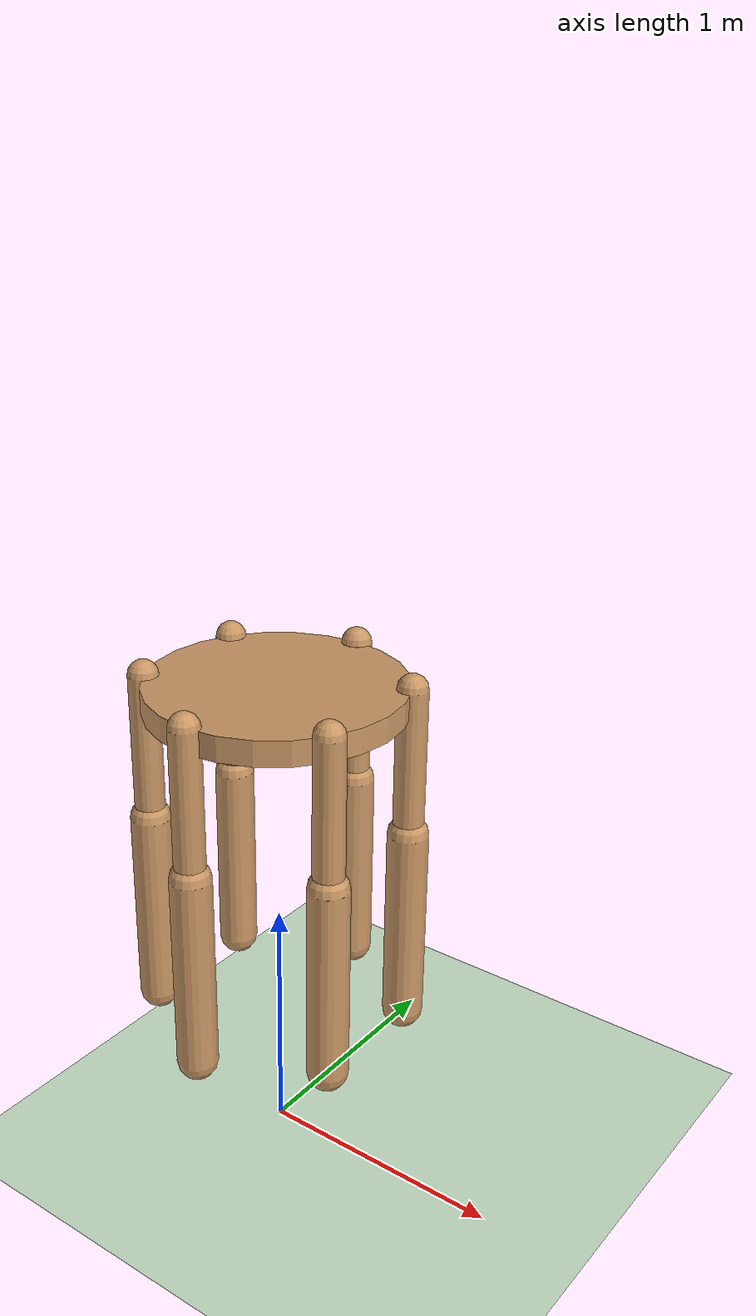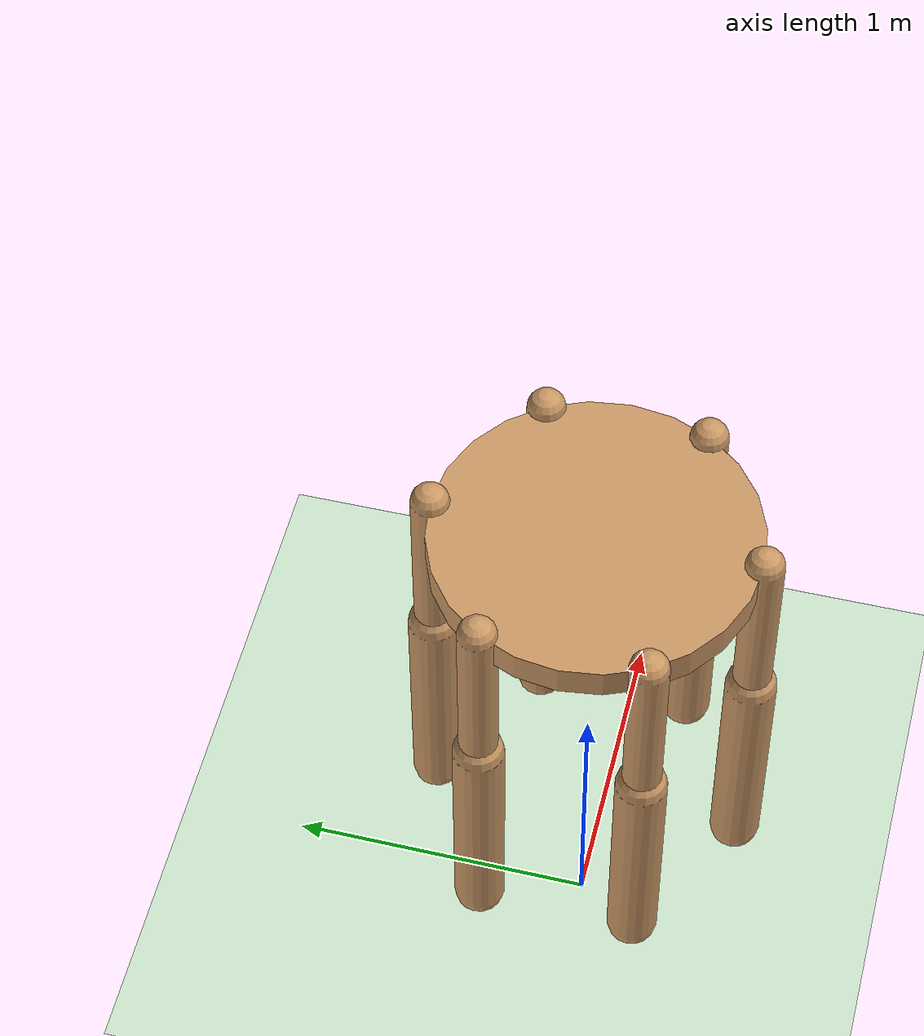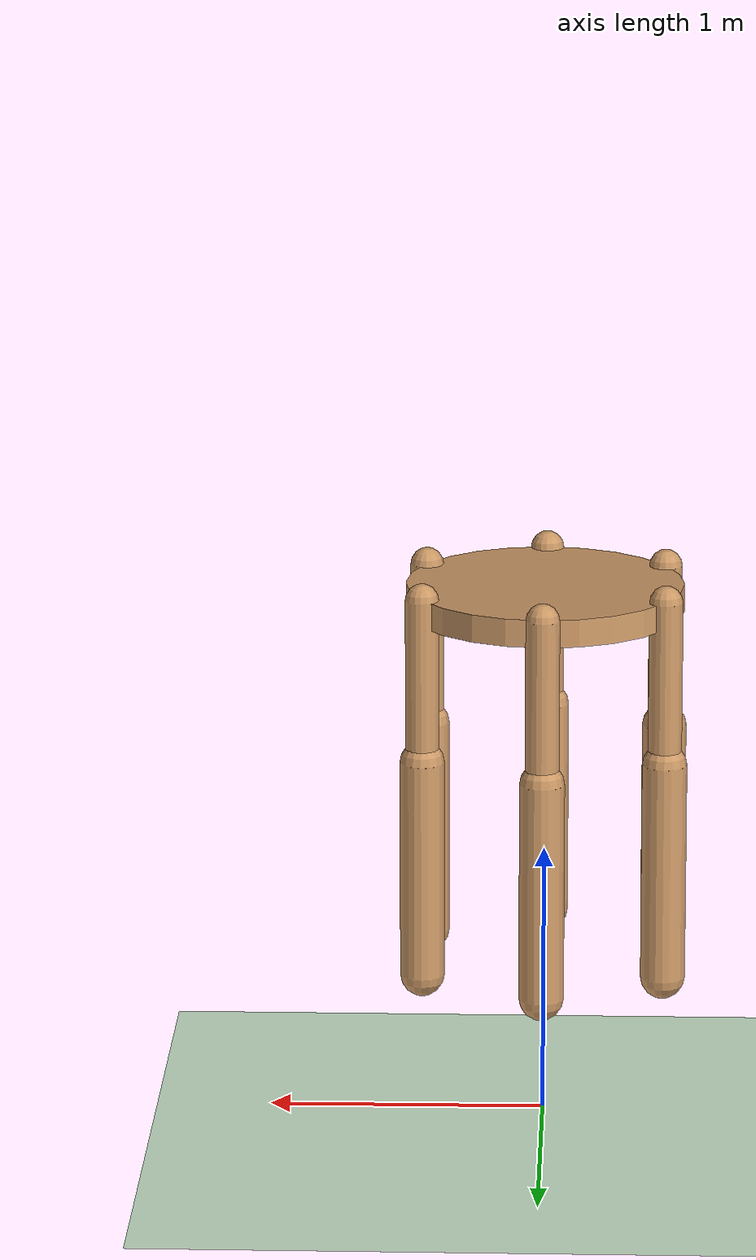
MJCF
<?xml version="1.0" encoding="utf-8"?>
<mujoco model="xmlrobot">
	<compiler/>
	<option gravity="0 0 0"/>
	<size nconmax="500" njmax="1000"/>
	<custom/>
	<default>
		<joint armature="1" damping="1" limited="true"/>
		<geom conaffinity="0" condim="3" margin="0.01" rgba="0.8 0.6 0.4 1"/>
	</default>
	<asset>
		<texture builtin="gradient" height="100" rgb1="1 1 1" rgb2="0 0 0" type="skybox" width="100"/>
		<texture builtin="flat" height="1278" mark="cross" markrgb="1 1 1" name="texgeom" random="0.01" rgb1="0.8 0.6 0.4" rgb2="0.8 0.6 0.4" type="cube" width="127"/>
		<texture builtin="checker" height="100" name="texplane" rgb1="0 0 0" rgb2="0.8 0.8 0.8" type="2d" width="100"/>
		<material name="MatPlane" reflectance="0.5" shininess="1" specular="1" texrepeat="60 60" texture="texplane"/>
		<material name="geom" texture="texgeom" texuniform="true"/>
	</asset>
	<worldbody>
		<light cutoff="100" diffuse="1 1 1" dir="0 0 -1.3" directional="true" exponent="1" pos="0 0 1.3" specular="0.1 0.1 0.1"/>
		<geom conaffinity="1" condim="3" material="MatPlane" name="floor" pos="0 0 0" rgba="0.8 0.9 0.8 1" size="40 40 40" type="plane"/>
		<body name="root" pos="0 0 2" euler="0 0 0">
			<geom name="geomroot" pos="0 0 2" size="0.0005" type="sphere"/>
			<body name="body1" pos="0 0 0" euler="0 90 0">
				<geom fromto="0 0 0 0.1 0 0" name="geombody1" pos="0 0 0" size="0.5" type="cylinder"/>
				<joint axis="1 0 0" name="joint_joint1" pos="0 0 0" range="-45 45" type="hinge"/>
				<body name="limbmount6" pos="0 0.25 -0.433" euler="0 0 0">
					<geom fromto="0 0 0 0.025 0 0" name="geomlimbmount6" size="0.025" type="capsule"/>
					<joint axis="1 0 0" name="joint_joint17" pos="0 0 0" range="-45 45" type="hinge"/>
					<body name="limblink6" pos="0 0 0" euler="0 0 0">
						<geom fromto="0 0 0 0.6 0 0" name="geomlimblink6" size="0.06" type="capsule"/>
						<joint axis="0 1 0" name="joint_joint18" pos="0 0 0" range="-45 45" type="hinge"/>
						<body name="leg6" pos="0.6 0 0" euler="0 0 0">
							<geom fromto="0 0 0 0.8 0 0" name="geomleg6" size="0.08" type="capsule"/>
							<joint axis="1 0 0" damping="2.5" name="joint_joint19" pos="0 0 0" range="-0.1 0.1" stiffness="80" type="slide"/>
						</body>
					</body>
				</body>
				<body name="limbmount5" pos="0 -0.25 -0.433" euler="0 0 0">
					<geom fromto="0 0 0 0.025 0 0" name="geomlimbmount5" size="0.025" type="capsule"/>
					<joint axis="1 0 0" name="joint_joint14" pos="0 0 0" range="-45 45" type="hinge"/>
					<body name="limblink5" pos="0 0 0" euler="0 0 0">
						<geom fromto="0 0 0 0.6 0 0" name="geomlimblink5" size="0.06" type="capsule"/>
						<joint axis="0 1 0" name="joint_joint15" pos="0 0 0" range="-45 45" type="hinge"/>
						<body name="leg5" pos="0.6 0 0" euler="0 0 0">
							<geom fromto="0 0 0 0.8 0 0" name="geomleg5" size="0.08" type="capsule"/>
							<joint axis="1 0 0" damping="2.5" name="joint_joint16" pos="0 0 0" range="-0.1 0.1" stiffness="80" type="slide"/>
						</body>
					</body>
				</body>
				<body name="limbmount4" pos="0 -0.5 0" euler="0 0 0">
					<geom fromto="0 0 0 0.025 0 0" name="geomlimbmount4" size="0.025" type="capsule"/>
					<joint axis="1 0 0" name="joint_joint11" pos="0 0 0" range="-45 45" type="hinge"/>
					<body name="limblink4" pos="0 0 0" euler="0 0 0">
						<geom fromto="0 0 0 0.6 0 0" name="geomlimblink4" size="0.06" type="capsule"/>
						<joint axis="0 1 0" name="joint_joint12" pos="0 0 0" range="-45 45" type="hinge"/>
						<body name="leg4" pos="0.6 0 0" euler="0 0 0">
							<geom fromto="0 0 0 0.8 0 0" name="geomleg4" size="0.08" type="capsule"/>
							<joint axis="1 0 0" damping="2.5" name="joint_joint13" pos="0 0 0" range="-0.1 0.1" stiffness="80" type="slide"/>
						</body>
					</body>
				</body>
				<body name="limbmount3" pos="0 -0.25 0.433" euler="0 0 0">
					<geom fromto="0 0 0 0.025 0 0" name="geomlimbmount3" size="0.025" type="capsule"/>
					<joint axis="1 0 0" name="joint_joint8" pos="0 0 0" range="-45 45" type="hinge"/>
					<body name="limblink3" pos="0 0 0" euler="0 0 0">
						<geom fromto="0 0 0 0.6 0 0" name="geomlimblink3" size="0.06" type="capsule"/>
						<joint axis="0 1 0" name="joint_joint9" pos="0 0 0" range="-45 45" type="hinge"/>
						<body name="leg3" pos="0.6 0 0" euler="0 0 0">
							<geom fromto="0 0 0 0.8 0 0" name="geomleg3" size="0.08" type="capsule"/>
							<joint axis="1 0 0" damping="2.5" name="joint_joint10" pos="0 0 0" range="-0.1 0.1" stiffness="80" type="slide"/>
						</body>
					</body>
				</body>
				<body name="limbmount2" pos="0 0.25 0.433" euler="0 0 0">
					<geom fromto="0 0 0 0.025 0 0" name="geomlimbmount2" size="0.025" type="capsule"/>
					<joint axis="1 0 0" name="joint_joint5" pos="0 0 0" range="-45 45" type="hinge"/>
					<body name="limblink2" pos="0 0 0" euler="0 0 0">
						<geom fromto="0 0 0 0.6 0 0" name="geomlimblink2" size="0.06" type="capsule"/>
						<joint axis="0 1 0" name="joint_joint6" pos="0 0 0" range="-45 45" type="hinge"/>
						<body name="leg2" pos="0.6 0 0" euler="0 0 0">
							<geom fromto="0 0 0 0.8 0 0" name="geomleg2" size="0.08" type="capsule"/>
							<joint axis="1 0 0" damping="2.5" name="joint_joint7" pos="0 0 0" range="-0.1 0.1" stiffness="80" type="slide"/>
						</body>
					</body>
				</body>
				<body name="limbmount1" pos="0 0.5 0" euler="0 0 0">
					<geom fromto="0 0 0 0.025 0 0" name="geomlimbmount1" size="0.025" type="capsule"/>
					<joint axis="1 0 0" name="joint_joint2" pos="0 0 0" range="-45 45" type="hinge"/>
					<body name="limblink1" pos="0 0 0" euler="0 0 0">
						<geom fromto="0 0 0 0.6 0 0" name="geomlimblink1" size="0.06" type="capsule"/>
						<joint axis="0 1 0" name="joint_joint3" pos="0 0 0" range="-45 45" type="hinge"/>
						<body name="leg1" pos="0.6 0 0" euler="0 0 0">
							<geom fromto="0 0 0 0.8 0 0" name="geomleg1" size="0.08" type="capsule"/>
							<joint axis="1 0 0" damping="2.5" name="joint_joint4" pos="0 0 0" range="-0.1 0.1" stiffness="80" type="slide"/>
						</body>
					</body>
				</body>
			</body>
		</body>
	</worldbody>
	<actuator>
		<motor ctrllimited="true" ctrlrange="-1 1" joint="joint_joint1"/>
		<motor ctrllimited="true" ctrlrange="-1 1" joint="joint_joint17"/>
		<motor ctrllimited="true" ctrlrange="-1 1" joint="joint_joint18"/>
		<motor ctrllimited="true" ctrlrange="-1 1" joint="joint_joint19"/>
		<motor ctrllimited="true" ctrlrange="-1 1" joint="joint_joint14"/>
		<motor ctrllimited="true" ctrlrange="-1 1" joint="joint_joint15"/>
		<motor ctrllimited="true" ctrlrange="-1 1" joint="joint_joint16"/>
		<motor ctrllimited="true" ctrlrange="-1 1" joint="joint_joint11"/>
		<motor ctrllimited="true" ctrlrange="-1 1" joint="joint_joint12"/>
		<motor ctrllimited="true" ctrlrange="-1 1" joint="joint_joint13"/>
		<motor ctrllimited="true" ctrlrange="-1 1" joint="joint_joint8"/>
		<motor ctrllimited="true" ctrlrange="-1 1" joint="joint_joint9"/>
		<motor ctrllimited="true" ctrlrange="-1 1" joint="joint_joint10"/>
		<motor ctrllimited="true" ctrlrange="-1 1" joint="joint_joint5"/>
		<motor ctrllimited="true" ctrlrange="-1 1" joint="joint_joint6"/>
		<motor ctrllimited="true" ctrlrange="-1 1" joint="joint_joint7"/>
		<motor ctrllimited="true" ctrlrange="-1 1" joint="joint_joint2"/>
		<motor ctrllimited="true" ctrlrange="-1 1" joint="joint_joint3"/>
		<motor ctrllimited="true" ctrlrange="-1 1" joint="joint_joint4"/>
	</actuator>
</mujoco>
